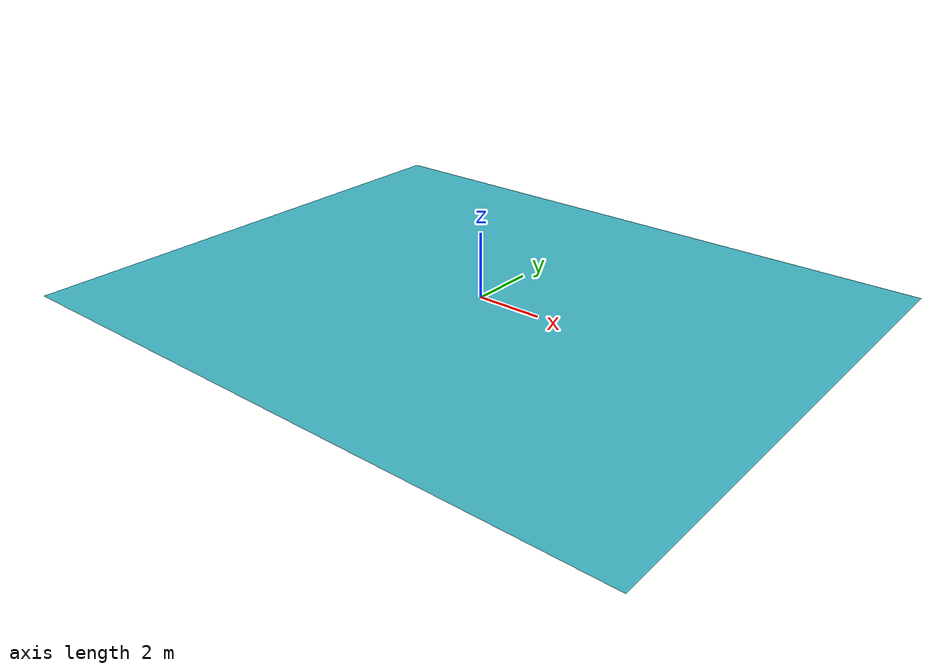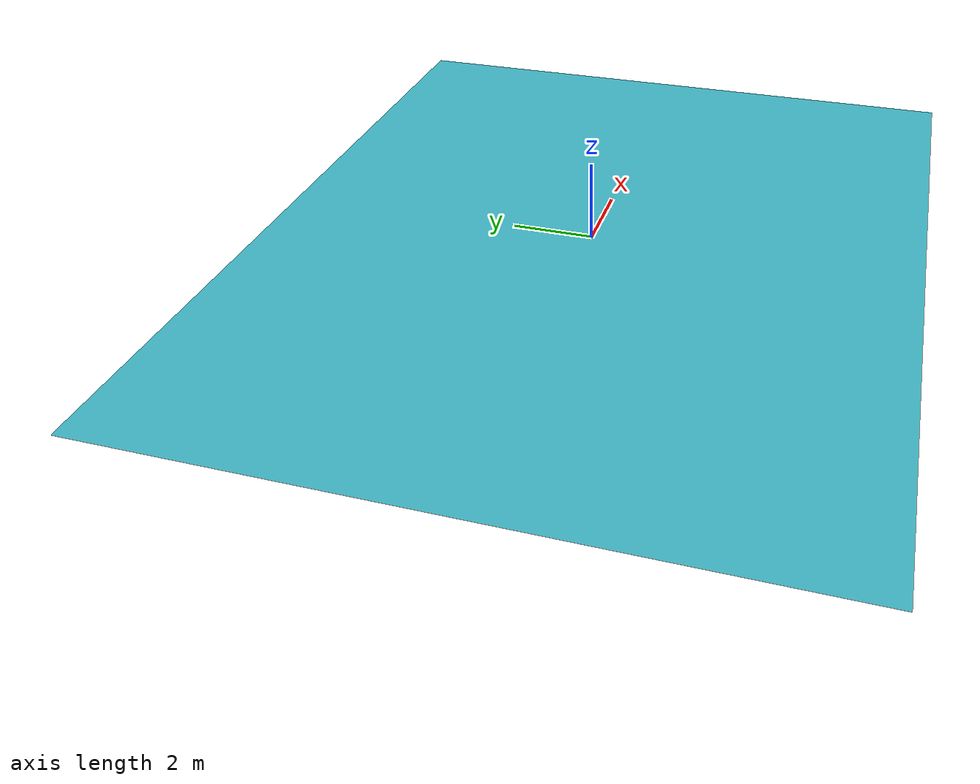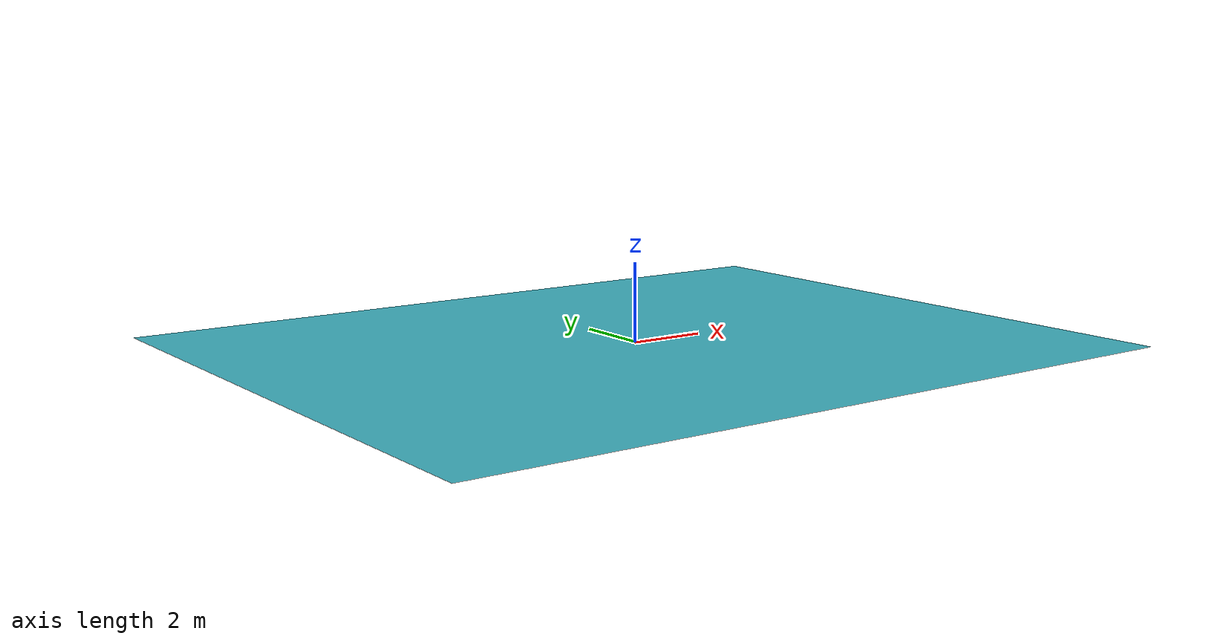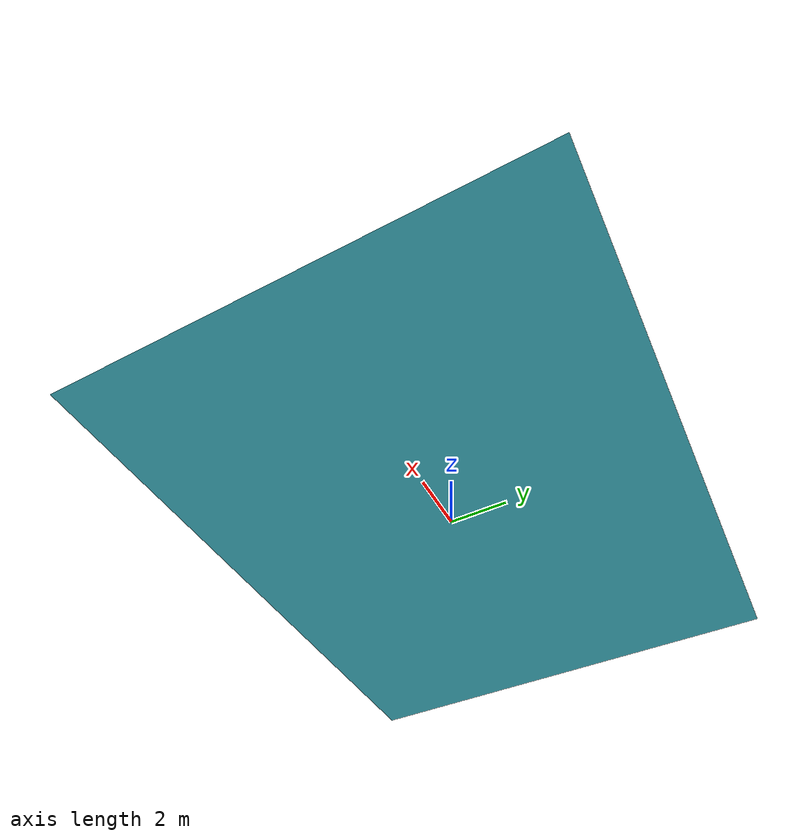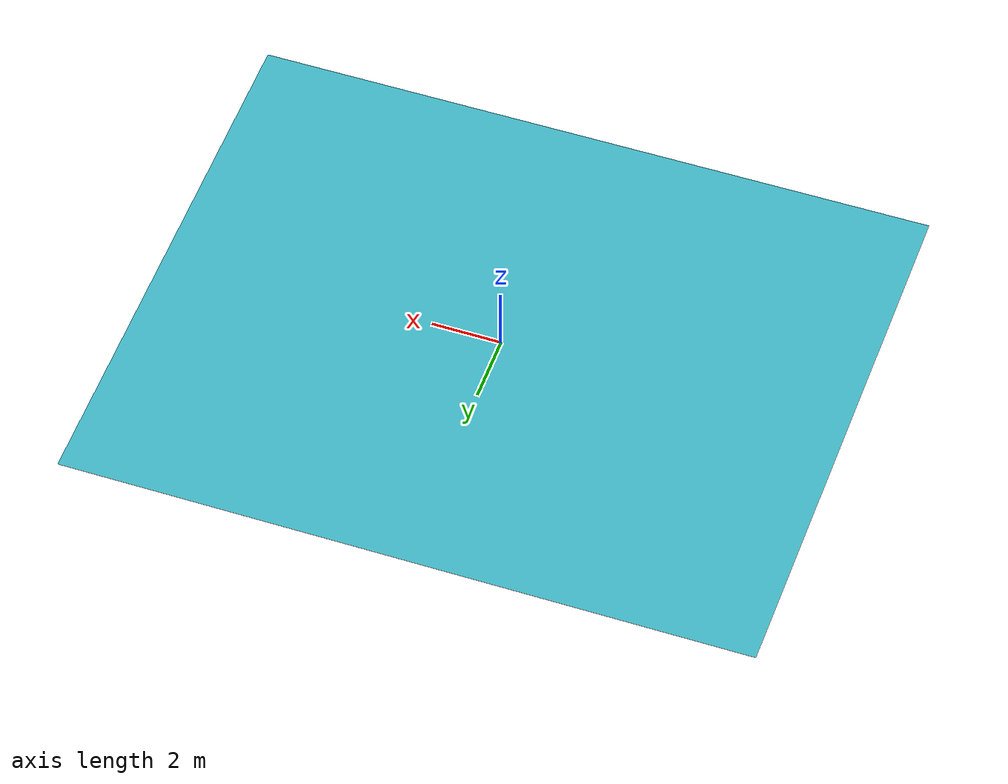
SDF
<?xml version="1.0" ?>
<sdf version="1.5">
  <model name="water">
    <pose>0 0 0 0 0 0</pose>
    <static>true</static>
    <link name="body">
      <visual name="visual">
        <geometry>
          <mesh><uri>model://water/media/water.dae</uri></mesh>
        </geometry>
	<material>
          <script>
            <uri>model://water/media/scripts</uri>
            <uri>model://water/media/Textures</uri>
            <name>RepeatedWater/Diffuse</name>
          </script>
        </material>
      </visual>
      <collision name="collision">
        <geometry>
          <mesh><uri>model://water/media/water.dae</uri></mesh>
        </geometry>
      </collision>
    </link>
  </model>
</sdf>
